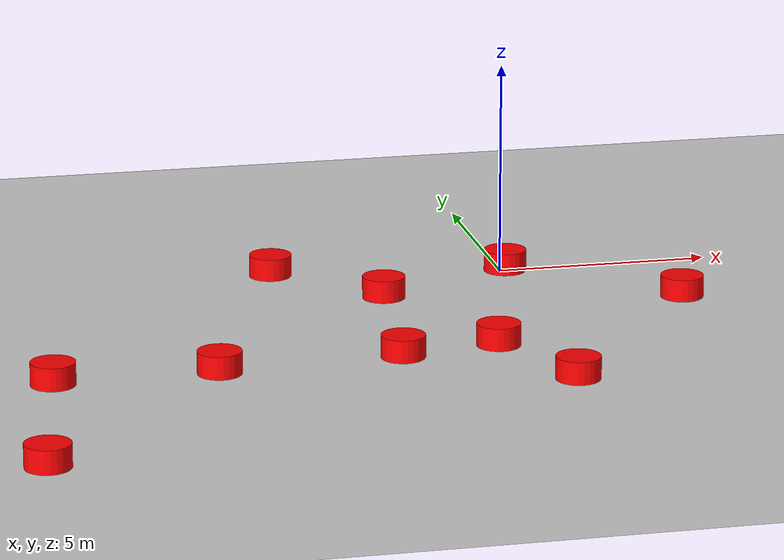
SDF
<sdf version="1.7">
 <world name="default">
  <model name="ground_plane">
   <static>1</static>
   <link name="link">
    <collision name="collision">
     <geometry><plane><normal>0 0 1</normal><size>100 100</size></plane></geometry>
     <surface><friction><ode><mu>100</mu><mu2>50</mu2></ode></friction></surface>
    </collision>
    <visual name="visual">
     <cast_shadows>0</cast_shadows>
     <geometry><plane><normal>0 0 1</normal><size>100 100</size></plane></geometry>
     <material>
      <script><uri>file://media/materials/scripts/gazebo.material</uri><name>Gazebo/Grey</name></script>
     </material>
    </visual>
   </link>
  </model>
  <model name="prognocol">
   <link name="link_1_clone">
    <inertial>
     <mass>1</mass>
     <inertia><ixx>0.145833</ixx><ixy>0</ixy><ixz>0</ixz><iyy>0.145833</iyy><iyz>0</iyz><izz>0.125</izz></inertia>
    </inertial>
    <pose>2.98374 2.57243 0.5 0 -0 0</pose>
    <visual name="visual">
     <geometry><cylinder><radius>0.5</radius><length>1</length></cylinder></geometry>
     <material>
      <lighting>1</lighting>
      <script><uri>file://media/materials/scripts/gazebo.material</uri><name>Gazebo/Grey</name></script>
      <shader type="pixel"><normal_map>__default__</normal_map></shader>
      <ambient>1 0 0 0</ambient>
      <diffuse>0.7 0.7 0.7 1</diffuse>
      <specular>0.01 0.01 0.01 1</specular>
      <emissive>0 0 0 1</emissive>
     </material>
    </visual>
    <collision name="collision">
     <geometry><cylinder><radius>0.0005</radius><length>1e-05</length></cylinder></geometry>
     <surface>
      <friction>
       <ode><mu>1</mu><mu2>1</mu2><fdir1>0 0 0</fdir1><slip1>0</slip1><slip2>0</slip2></ode>
       <torsional>
        <coefficient>1</coefficient>
        <patch_radius>0</patch_radius>
        <surface_radius>0</surface_radius>
        <use_patch_radius>1</use_patch_radius>
        <ode><slip>0</slip></ode>
       </torsional>
      </friction>
      <bounce><restitution_coefficient>0</restitution_coefficient><threshold>1e+06</threshold></bounce>
      <contact>
       <collide_without_contact>0</collide_without_contact>
       <collide_without_contact_bitmask>1</collide_without_contact_bitmask>
       <collide_bitmask>1</collide_bitmask>
       <ode>
        <soft_cfm>0</soft_cfm>
        <soft_erp>0.2</soft_erp>
        <kp>1e+13</kp>
        <kd>1</kd>
        <max_vel>0.01</max_vel>
        <min_depth>0</min_depth>
       </ode>
       <bullet>
        <split_impulse>1</split_impulse>
        <split_impulse_penetration_threshold>-0.01</split_impulse_penetration_threshold>
        <soft_cfm>0</soft_cfm>
        <soft_erp>0.2</soft_erp>
        <kp>1e+13</kp>
        <kd>1</kd>
       </bullet>
      </contact>
     </surface>
    </collision>
   </link>
   <link name="link_1_clone_0">
    <inertial>
     <mass>1</mass>
     <inertia><ixx>0.145833</ixx><ixy>0</ixy><ixz>0</ixz><iyy>0.145833</iyy><iyz>0</iyz><izz>0.125</izz></inertia>
    </inertial>
    <pose>6.50341 -0.320015 0.5 0 -0 0</pose>
    <visual name="visual">
     <geometry><cylinder><radius>0.5</radius><length>1</length></cylinder></geometry>
     <material>
      <lighting>1</lighting>
      <script><uri>file://media/materials/scripts/gazebo.material</uri><name>Gazebo/Grey</name></script>
      <shader type="pixel"><normal_map>__default__</normal_map></shader>
      <ambient>1 0 0 0</ambient>
      <diffuse>0.7 0.7 0.7 1</diffuse>
      <specular>0.01 0.01 0.01 1</specular>
      <emissive>0 0 0 1</emissive>
     </material>
    </visual>
    <collision name="collision">
     <geometry><cylinder><radius>0.0005</radius><length>1e-05</length></cylinder></geometry>
     <surface>
      <friction>
       <ode><mu>1</mu><mu2>1</mu2><fdir1>0 0 0</fdir1><slip1>0</slip1><slip2>0</slip2></ode>
       <torsional>
        <coefficient>1</coefficient>
        <patch_radius>0</patch_radius>
        <surface_radius>0</surface_radius>
        <use_patch_radius>1</use_patch_radius>
        <ode><slip>0</slip></ode>
       </torsional>
      </friction>
      <bounce><restitution_coefficient>0</restitution_coefficient><threshold>1e+06</threshold></bounce>
      <contact>
       <collide_without_contact>0</collide_without_contact>
       <collide_without_contact_bitmask>1</collide_without_contact_bitmask>
       <collide_bitmask>1</collide_bitmask>
       <ode>
        <soft_cfm>0</soft_cfm>
        <soft_erp>0.2</soft_erp>
        <kp>1e+13</kp>
        <kd>1</kd>
        <max_vel>0.01</max_vel>
        <min_depth>0</min_depth>
       </ode>
       <bullet>
        <split_impulse>1</split_impulse>
        <split_impulse_penetration_threshold>-0.01</split_impulse_penetration_threshold>
        <soft_cfm>0</soft_cfm>
        <soft_erp>0.2</soft_erp>
        <kp>1e+13</kp>
        <kd>1</kd>
       </bullet>
      </contact>
     </surface>
    </collision>
   </link>
   <link name="link_1_clone_14">
    <inertial>
     <mass>1</mass>
     <inertia><ixx>0.145833</ixx><ixy>0</ixy><ixz>0</ixz><iyy>0.145833</iyy><iyz>0</iyz><izz>0.125</izz></inertia>
    </inertial>
    <pose>-0.284722 1.06315 0.5 0 -0 0</pose>
    <visual name="visual">
     <geometry><cylinder><radius>0.5</radius><length>1</length></cylinder></geometry>
     <material>
      <lighting>1</lighting>
      <script><uri>file://media/materials/scripts/gazebo.material</uri><name>Gazebo/Grey</name></script>
      <shader type="pixel"><normal_map>__default__</normal_map></shader>
      <ambient>1 0 0 0</ambient>
      <diffuse>0.7 0.7 0.7 1</diffuse>
      <specular>0.01 0.01 0.01 1</specular>
      <emissive>0 0 0 1</emissive>
     </material>
    </visual>
    <collision name="collision">
     <geometry><cylinder><radius>0.0005</radius><length>1e-05</length></cylinder></geometry>
     <surface>
      <friction>
       <ode><mu>1</mu><mu2>1</mu2><fdir1>0 0 0</fdir1><slip1>0</slip1><slip2>0</slip2></ode>
       <torsional>
        <coefficient>1</coefficient>
        <patch_radius>0</patch_radius>
        <surface_radius>0</surface_radius>
        <use_patch_radius>1</use_patch_radius>
        <ode><slip>0</slip></ode>
       </torsional>
      </friction>
      <bounce><restitution_coefficient>0</restitution_coefficient><threshold>1e+06</threshold></bounce>
      <contact>
       <collide_without_contact>0</collide_without_contact>
       <collide_without_contact_bitmask>1</collide_without_contact_bitmask>
       <collide_bitmask>1</collide_bitmask>
       <ode>
        <soft_cfm>0</soft_cfm>
        <soft_erp>0.2</soft_erp>
        <kp>1e+13</kp>
        <kd>1</kd>
        <max_vel>0.01</max_vel>
        <min_depth>0</min_depth>
       </ode>
       <bullet>
        <split_impulse>1</split_impulse>
        <split_impulse_penetration_threshold>-0.01</split_impulse_penetration_threshold>
        <soft_cfm>0</soft_cfm>
        <soft_erp>0.2</soft_erp>
        <kp>1e+13</kp>
        <kd>1</kd>
       </bullet>
      </contact>
     </surface>
    </collision>
   </link>
   <link name="link_1_clone_16">
    <inertial>
     <mass>1</mass>
     <inertia><ixx>0.145833</ixx><ixy>0</ixy><ixz>0</ixz><iyy>0.145833</iyy><iyz>0</iyz><izz>0.125</izz></inertia>
    </inertial>
    <pose>-2.54709 3.32603 0.5 0 -0 0</pose>
    <visual name="visual">
     <geometry><cylinder><radius>0.5</radius><length>1</length></cylinder></geometry>
     <material>
      <lighting>1</lighting>
      <script><uri>file://media/materials/scripts/gazebo.material</uri><name>Gazebo/Grey</name></script>
      <shader type="pixel"><normal_map>__default__</normal_map></shader>
      <ambient>1 0 0 0</ambient>
      <diffuse>0.7 0.7 0.7 1</diffuse>
      <specular>0.01 0.01 0.01 1</specular>
      <emissive>0 0 0 1</emissive>
     </material>
    </visual>
    <collision name="collision">
     <geometry><cylinder><radius>0.0005</radius><length>1e-05</length></cylinder></geometry>
     <surface>
      <friction>
       <ode><mu>1</mu><mu2>1</mu2><fdir1>0 0 0</fdir1><slip1>0</slip1><slip2>0</slip2></ode>
       <torsional>
        <coefficient>1</coefficient>
        <patch_radius>0</patch_radius>
        <surface_radius>0</surface_radius>
        <use_patch_radius>1</use_patch_radius>
        <ode><slip>0</slip></ode>
       </torsional>
      </friction>
      <bounce><restitution_coefficient>0</restitution_coefficient><threshold>1e+06</threshold></bounce>
      <contact>
       <collide_without_contact>0</collide_without_contact>
       <collide_without_contact_bitmask>1</collide_without_contact_bitmask>
       <collide_bitmask>1</collide_bitmask>
       <ode>
        <soft_cfm>0</soft_cfm>
        <soft_erp>0.2</soft_erp>
        <kp>1e+13</kp>
        <kd>1</kd>
        <max_vel>0.01</max_vel>
        <min_depth>0</min_depth>
       </ode>
       <bullet>
        <split_impulse>1</split_impulse>
        <split_impulse_penetration_threshold>-0.01</split_impulse_penetration_threshold>
        <soft_cfm>0</soft_cfm>
        <soft_erp>0.2</soft_erp>
        <kp>1e+13</kp>
        <kd>1</kd>
       </bullet>
      </contact>
     </surface>
    </collision>
   </link>
   <link name="link_1_clone_23">
    <inertial>
     <mass>1</mass>
     <inertia><ixx>0.145833</ixx><ixy>0</ixy><ixz>0</ixz><iyy>0.145833</iyy><iyz>0</iyz><izz>0.125</izz></inertia>
    </inertial>
    <pose>-0.787382 -3.33546 0.5 0 -0 0</pose>
    <visual name="visual">
     <geometry><cylinder><radius>0.5</radius><length>1</length></cylinder></geometry>
     <material>
      <lighting>1</lighting>
      <script><uri>file://media/materials/scripts/gazebo.material</uri><name>Gazebo/Grey</name></script>
      <shader type="pixel"><normal_map>__default__</normal_map></shader>
      <ambient>1 0 0 0</ambient>
      <diffuse>0.7 0.7 0.7 1</diffuse>
      <specular>0.01 0.01 0.01 1</specular>
      <emissive>0 0 0 1</emissive>
     </material>
    </visual>
    <collision name="collision">
     <geometry><cylinder><radius>0.0005</radius><length>1e-05</length></cylinder></geometry>
     <surface>
      <friction>
       <ode><mu>1</mu><mu2>1</mu2><fdir1>0 0 0</fdir1><slip1>0</slip1><slip2>0</slip2></ode>
       <torsional>
        <coefficient>1</coefficient>
        <patch_radius>0</patch_radius>
        <surface_radius>0</surface_radius>
        <use_patch_radius>1</use_patch_radius>
        <ode><slip>0</slip></ode>
       </torsional>
      </friction>
      <bounce><restitution_coefficient>0</restitution_coefficient><threshold>1e+06</threshold></bounce>
      <contact>
       <collide_without_contact>0</collide_without_contact>
       <collide_without_contact_bitmask>1</collide_without_contact_bitmask>
       <collide_bitmask>1</collide_bitmask>
       <ode>
        <soft_cfm>0</soft_cfm>
        <soft_erp>0.2</soft_erp>
        <kp>1e+13</kp>
        <kd>1</kd>
        <max_vel>0.01</max_vel>
        <min_depth>0</min_depth>
       </ode>
       <bullet>
        <split_impulse>1</split_impulse>
        <split_impulse_penetration_threshold>-0.01</split_impulse_penetration_threshold>
        <soft_cfm>0</soft_cfm>
        <soft_erp>0.2</soft_erp>
        <kp>1e+13</kp>
        <kd>1</kd>
       </bullet>
      </contact>
     </surface>
    </collision>
   </link>
   <link name="link_1_clone_24">
    <inertial>
     <mass>1</mass>
     <inertia><ixx>0.145833</ixx><ixy>0</ixy><ixz>0</ixz><iyy>0.145833</iyy><iyz>0</iyz><izz>0.125</izz></inertia>
    </inertial>
    <pose>-4.93531 -3.58874 0.5 0 -0 0</pose>
    <visual name="visual">
     <geometry><cylinder><radius>0.5</radius><length>1</length></cylinder></geometry>
     <material>
      <lighting>1</lighting>
      <script><uri>file://media/materials/scripts/gazebo.material</uri><name>Gazebo/Grey</name></script>
      <shader type="pixel"><normal_map>__default__</normal_map></shader>
      <ambient>1 0 0 0</ambient>
      <diffuse>0.7 0.7 0.7 1</diffuse>
      <specular>0.01 0.01 0.01 1</specular>
      <emissive>0 0 0 1</emissive>
     </material>
    </visual>
    <collision name="collision">
     <geometry><cylinder><radius>0.0005</radius><length>1e-05</length></cylinder></geometry>
     <surface>
      <friction>
       <ode><mu>1</mu><mu2>1</mu2><fdir1>0 0 0</fdir1><slip1>0</slip1><slip2>0</slip2></ode>
       <torsional>
        <coefficient>1</coefficient>
        <patch_radius>0</patch_radius>
        <surface_radius>0</surface_radius>
        <use_patch_radius>1</use_patch_radius>
        <ode><slip>0</slip></ode>
       </torsional>
      </friction>
      <bounce><restitution_coefficient>0</restitution_coefficient><threshold>1e+06</threshold></bounce>
      <contact>
       <collide_without_contact>0</collide_without_contact>
       <collide_without_contact_bitmask>1</collide_without_contact_bitmask>
       <collide_bitmask>1</collide_bitmask>
       <ode>
        <soft_cfm>0</soft_cfm>
        <soft_erp>0.2</soft_erp>
        <kp>1e+13</kp>
        <kd>1</kd>
        <max_vel>0.01</max_vel>
        <min_depth>0</min_depth>
       </ode>
       <bullet>
        <split_impulse>1</split_impulse>
        <split_impulse_penetration_threshold>-0.01</split_impulse_penetration_threshold>
        <soft_cfm>0</soft_cfm>
        <soft_erp>0.2</soft_erp>
        <kp>1e+13</kp>
        <kd>1</kd>
       </bullet>
      </contact>
     </surface>
    </collision>
   </link>
   <link name="link_1_clone_25">
    <inertial>
     <mass>1</mass>
     <inertia><ixx>0.145833</ixx><ixy>0</ixy><ixz>0</ixz><iyy>0.145833</iyy><iyz>0</iyz><izz>0.125</izz></inertia>
    </inertial>
    <pose>-8.58058 -3.58874 0.5 0 -0 0</pose>
    <visual name="visual">
     <geometry><cylinder><radius>0.5</radius><length>1</length></cylinder></geometry>
     <material>
      <lighting>1</lighting>
      <script><uri>file://media/materials/scripts/gazebo.material</uri><name>Gazebo/Grey</name></script>
      <shader type="pixel"><normal_map>__default__</normal_map></shader>
      <ambient>1 0 0 0</ambient>
      <diffuse>0.7 0.7 0.7 1</diffuse>
      <specular>0.01 0.01 0.01 1</specular>
      <emissive>0 0 0 1</emissive>
     </material>
    </visual>
    <collision name="collision">
     <geometry><cylinder><radius>0.0005</radius><length>1e-05</length></cylinder></geometry>
     <surface>
      <friction>
       <ode><mu>1</mu><mu2>1</mu2><fdir1>0 0 0</fdir1><slip1>0</slip1><slip2>0</slip2></ode>
       <torsional>
        <coefficient>1</coefficient>
        <patch_radius>0</patch_radius>
        <surface_radius>0</surface_radius>
        <use_patch_radius>1</use_patch_radius>
        <ode><slip>0</slip></ode>
       </torsional>
      </friction>
      <bounce><restitution_coefficient>0</restitution_coefficient><threshold>1e+06</threshold></bounce>
      <contact>
       <collide_without_contact>0</collide_without_contact>
       <collide_without_contact_bitmask>1</collide_without_contact_bitmask>
       <collide_bitmask>1</collide_bitmask>
       <ode>
        <soft_cfm>0</soft_cfm>
        <soft_erp>0.2</soft_erp>
        <kp>1e+13</kp>
        <kd>1</kd>
        <max_vel>0.01</max_vel>
        <min_depth>0</min_depth>
       </ode>
       <bullet>
        <split_impulse>1</split_impulse>
        <split_impulse_penetration_threshold>-0.01</split_impulse_penetration_threshold>
        <soft_cfm>0</soft_cfm>
        <soft_erp>0.2</soft_erp>
        <kp>1e+13</kp>
        <kd>1</kd>
       </bullet>
      </contact>
     </surface>
    </collision>
   </link>
   <link name="link_1_clone_26">
    <inertial>
     <mass>1</mass>
     <inertia><ixx>0.145833</ixx><ixy>0</ixy><ixz>0</ixz><iyy>0.145833</iyy><iyz>0</iyz><izz>0.125</izz></inertia>
    </inertial>
    <pose>-9.3347 -8.74095 0.5 0 -0 0</pose>
    <visual name="visual">
     <geometry><cylinder><radius>0.5</radius><length>1</length></cylinder></geometry>
     <material>
      <lighting>1</lighting>
      <script><uri>file://media/materials/scripts/gazebo.material</uri><name>Gazebo/Grey</name></script>
      <shader type="pixel"><normal_map>__default__</normal_map></shader>
      <ambient>1 0 0 0</ambient>
      <diffuse>0.7 0.7 0.7 1</diffuse>
      <specular>0.01 0.01 0.01 1</specular>
      <emissive>0 0 0 1</emissive>
     </material>
    </visual>
    <collision name="collision">
     <geometry><cylinder><radius>0.0005</radius><length>1e-05</length></cylinder></geometry>
     <surface>
      <friction>
       <ode><mu>1</mu><mu2>1</mu2><fdir1>0 0 0</fdir1><slip1>0</slip1><slip2>0</slip2></ode>
       <torsional>
        <coefficient>1</coefficient>
        <patch_radius>0</patch_radius>
        <surface_radius>0</surface_radius>
        <use_patch_radius>1</use_patch_radius>
        <ode><slip>0</slip></ode>
       </torsional>
      </friction>
      <bounce><restitution_coefficient>0</restitution_coefficient><threshold>1e+06</threshold></bounce>
      <contact>
       <collide_without_contact>0</collide_without_contact>
       <collide_without_contact_bitmask>1</collide_without_contact_bitmask>
       <collide_bitmask>1</collide_bitmask>
       <ode>
        <soft_cfm>0</soft_cfm>
        <soft_erp>0.2</soft_erp>
        <kp>1e+13</kp>
        <kd>1</kd>
        <max_vel>0.01</max_vel>
        <min_depth>0</min_depth>
       </ode>
       <bullet>
        <split_impulse>1</split_impulse>
        <split_impulse_penetration_threshold>-0.01</split_impulse_penetration_threshold>
        <soft_cfm>0</soft_cfm>
        <soft_erp>0.2</soft_erp>
        <kp>1e+13</kp>
        <kd>1</kd>
       </bullet>
      </contact>
     </surface>
    </collision>
   </link>
   <link name="link_1_clone_29">
    <inertial>
     <mass>1</mass>
     <inertia><ixx>0.145833</ixx><ixy>0</ixy><ixz>0</ixz><iyy>0.145833</iyy><iyz>0</iyz><izz>0.125</izz></inertia>
    </inertial>
    <pose>1.47524 -2.95918 0.5 0 -0 0</pose>
    <visual name="visual">
     <geometry><cylinder><radius>0.5</radius><length>1</length></cylinder></geometry>
     <material>
      <lighting>1</lighting>
      <script><uri>file://media/materials/scripts/gazebo.material</uri><name>Gazebo/Grey</name></script>
      <shader type="pixel"><normal_map>__default__</normal_map></shader>
      <ambient>1 0 0 0</ambient>
      <diffuse>0.7 0.7 0.7 1</diffuse>
      <specular>0.01 0.01 0.01 1</specular>
      <emissive>0 0 0 1</emissive>
     </material>
    </visual>
    <collision name="collision">
     <geometry><cylinder><radius>0.0005</radius><length>1e-05</length></cylinder></geometry>
     <surface>
      <friction>
       <ode><mu>1</mu><mu2>1</mu2><fdir1>0 0 0</fdir1><slip1>0</slip1><slip2>0</slip2></ode>
       <torsional>
        <coefficient>1</coefficient>
        <patch_radius>0</patch_radius>
        <surface_radius>0</surface_radius>
        <use_patch_radius>1</use_patch_radius>
        <ode><slip>0</slip></ode>
       </torsional>
      </friction>
      <bounce><restitution_coefficient>0</restitution_coefficient><threshold>1e+06</threshold></bounce>
      <contact>
       <collide_without_contact>0</collide_without_contact>
       <collide_without_contact_bitmask>1</collide_without_contact_bitmask>
       <collide_bitmask>1</collide_bitmask>
       <ode>
        <soft_cfm>0</soft_cfm>
        <soft_erp>0.2</soft_erp>
        <kp>1e+13</kp>
        <kd>1</kd>
        <max_vel>0.01</max_vel>
        <min_depth>0</min_depth>
       </ode>
       <bullet>
        <split_impulse>1</split_impulse>
        <split_impulse_penetration_threshold>-0.01</split_impulse_penetration_threshold>
        <soft_cfm>0</soft_cfm>
        <soft_erp>0.2</soft_erp>
        <kp>1e+13</kp>
        <kd>1</kd>
       </bullet>
      </contact>
     </surface>
    </collision>
   </link>
   <link name="link_1_clone_30">
    <inertial>
     <mass>1</mass>
     <inertia><ixx>0.145833</ixx><ixy>0</ixy><ixz>0</ixz><iyy>0.145833</iyy><iyz>0</iyz><izz>0.125</izz></inertia>
    </inertial>
    <pose>2.60642 -5.59938 0.5 0 -0 0</pose>
    <visual name="visual">
     <geometry><cylinder><radius>0.5</radius><length>1</length></cylinder></geometry>
     <material>
      <lighting>1</lighting>
      <script><uri>file://media/materials/scripts/gazebo.material</uri><name>Gazebo/Grey</name></script>
      <shader type="pixel"><normal_map>__default__</normal_map></shader>
      <ambient>1 0 0 0</ambient>
      <diffuse>0.7 0.7 0.7 1</diffuse>
      <specular>0.01 0.01 0.01 1</specular>
      <emissive>0 0 0 1</emissive>
     </material>
    </visual>
    <collision name="collision">
     <geometry><cylinder><radius>0.0005</radius><length>1e-05</length></cylinder></geometry>
     <surface>
      <friction>
       <ode><mu>1</mu><mu2>1</mu2><fdir1>0 0 0</fdir1><slip1>0</slip1><slip2>0</slip2></ode>
       <torsional>
        <coefficient>1</coefficient>
        <patch_radius>0</patch_radius>
        <surface_radius>0</surface_radius>
        <use_patch_radius>1</use_patch_radius>
        <ode><slip>0</slip></ode>
       </torsional>
      </friction>
      <bounce><restitution_coefficient>0</restitution_coefficient><threshold>1e+06</threshold></bounce>
      <contact>
       <collide_without_contact>0</collide_without_contact>
       <collide_without_contact_bitmask>1</collide_without_contact_bitmask>
       <collide_bitmask>1</collide_bitmask>
       <ode>
        <soft_cfm>0</soft_cfm>
        <soft_erp>0.2</soft_erp>
        <kp>1e+13</kp>
        <kd>1</kd>
        <max_vel>0.01</max_vel>
        <min_depth>0</min_depth>
       </ode>
       <bullet>
        <split_impulse>1</split_impulse>
        <split_impulse_penetration_threshold>-0.01</split_impulse_penetration_threshold>
        <soft_cfm>0</soft_cfm>
        <soft_erp>0.2</soft_erp>
        <kp>1e+13</kp>
        <kd>1</kd>
       </bullet>
      </contact>
     </surface>
    </collision>
   </link>
   <static>0</static>
   <pose>-2.84122 -2.48393 -0.499947 -1.4e-05 0.000244 0</pose>
  </model>
 </world>
</sdf>
